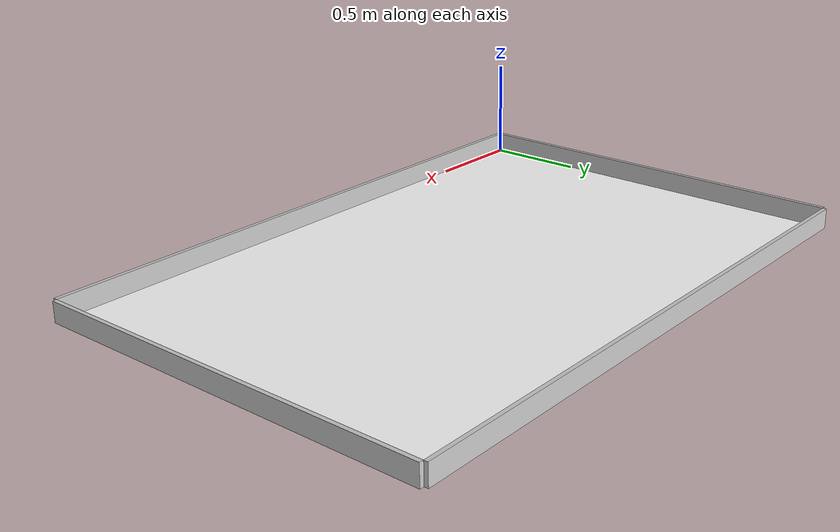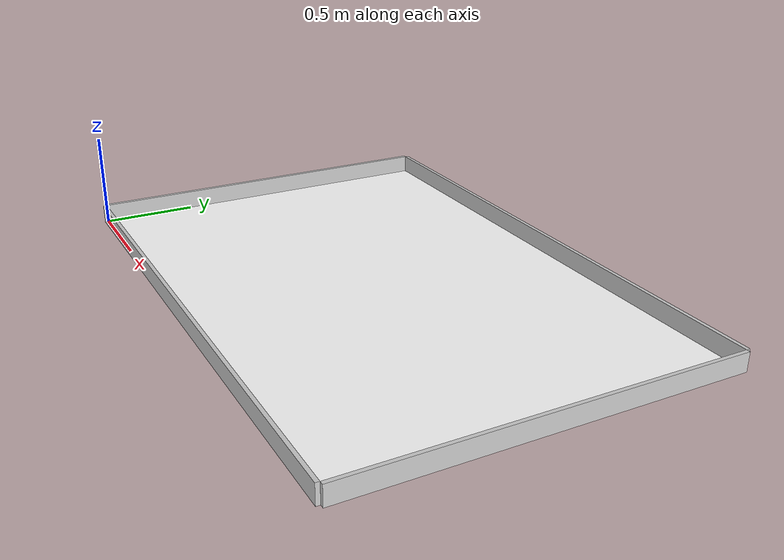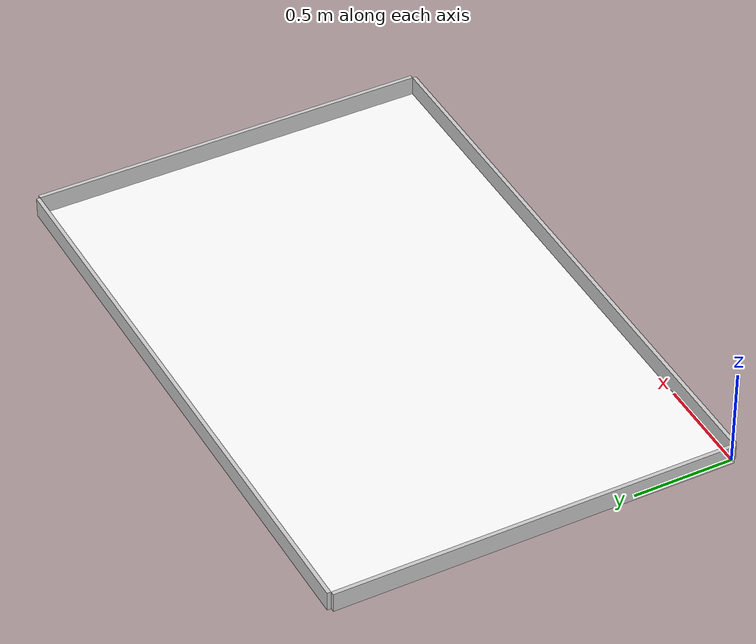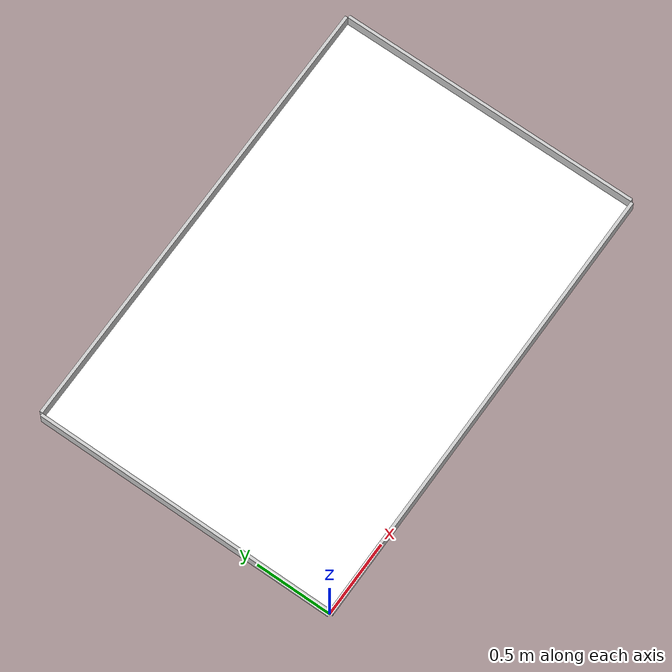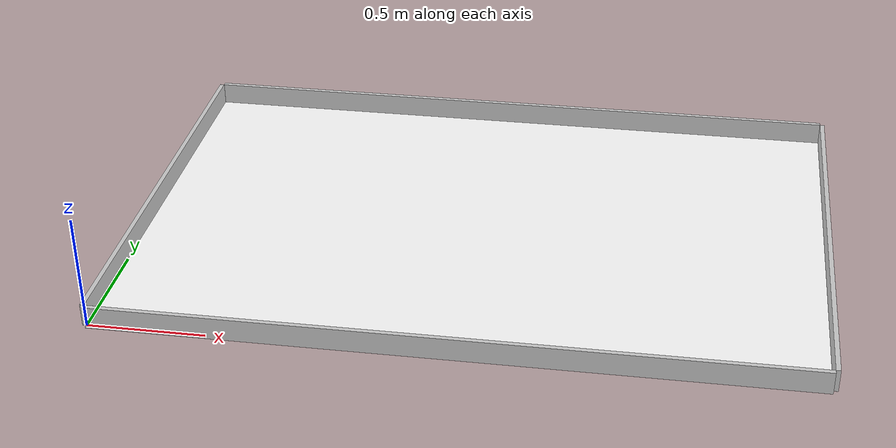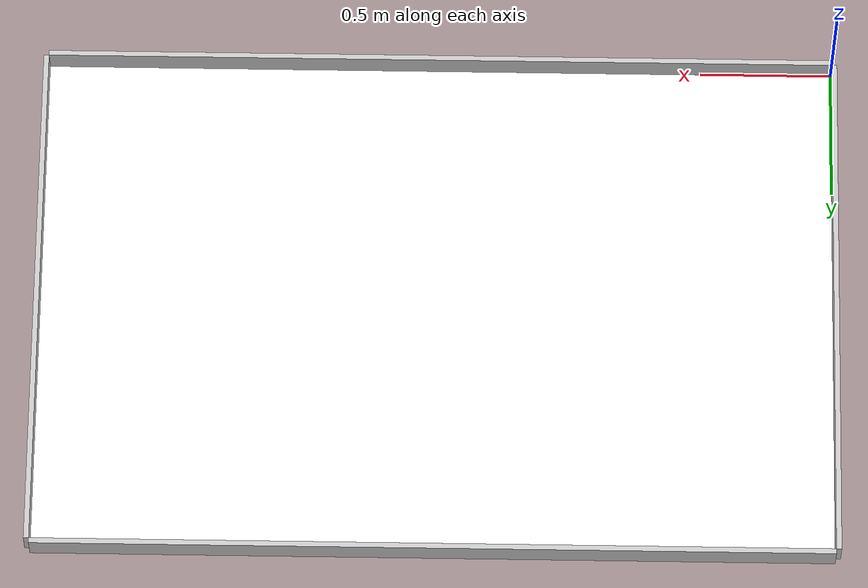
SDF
<?xml version="1.0" ?>
<sdf version="1.6">
  <world name="arena_world">

    <!-- ================== GUI / Caméra par défaut ================== -->

    <!-- ================== Lumière ================== -->
    <light name="sun" type="directional">
      <cast_shadows>true</cast_shadows>
      <pose>1.5 1.0 2 0 0 0</pose>
      <diffuse>1 1 1 1</diffuse>
      <specular>0.2 0.2 0.2 1</specular>
      <direction>-0.5 0.1 -0.9</direction>
    </light>

    <!-- ================== Sol ================== -->
    <model name="textured_floor">
      <static>true</static>
      <pose>1.5 1.0 0 0 0 0</pose>
      <link name="link">
        <collision name="collision">
          <geometry>
            <plane>
              <normal>0 0 1</normal>
              <size>3 2</size>
            </plane>
          </geometry>
        </collision>
        <visual name="visual">
          <geometry>
            <plane>
              <normal>0 0 1</normal>
              <size>3 2</size>
            </plane>
          </geometry>
          <material>
            <diffuse>1 1 1 1</diffuse>
            <specular>0.0 0.0 0.0 1</specular>
            <pbr>
              <metal>
                <albedo_map>materials/textures/map_image.png</albedo_map>
              </metal>
            </pbr>
          </material>
        </visual>

      </link>
    </model>

    <!-- ================== Scene ================== -->
    <scene>
      <ambient>0.4 0.4 0.4 1</ambient>
      <background>0.7 0.7 0.7 1</background>
      <shadows>true</shadows>
    </scene>

    <!--  MURS  -->
    <model name="wall_north">
      <static>true</static>
      <pose>1.5 2.01 0.05 0 0 0</pose>
      <link name="link">
        <collision name="col">
          <geometry><box><size>3 0.02 0.1</size></box></geometry>
        </collision>
        <visual name="vis">
          <geometry><box><size>3 0.02 0.1</size></box></geometry>
          <material><ambient>0.8 0.8 0.8 1</ambient><diffuse>0.8 0.8 0.8 1</diffuse></material>
        </visual>
      </link>
    </model>

    <model name="wall_south">
      <static>true</static>
      <pose>1.5 -0.01 0.05 0 0 0</pose>
      <link name="link">
        <collision name="col">
          <geometry><box><size>3 0.02 0.1</size></box></geometry>
        </collision>
        <visual name="vis">
          <geometry><box><size>3 0.02 0.1</size></box></geometry>
          <material><ambient>0.8 0.8 0.8 1</ambient><diffuse>0.8 0.8 0.8 1</diffuse></material>
        </visual>
      </link>
    </model>

    <model name="wall_east">
      <static>true</static>
      <pose>-0.01 1.0 0.05 0 0 0</pose>
      <link name="link">
        <collision name="col">
          <geometry><box><size>0.02 2 0.1</size></box></geometry>
        </collision>
        <visual name="vis">
          <geometry><box><size>0.02 2 0.1</size></box></geometry>
          <material><ambient>0.8 0.8 0.8 1</ambient><diffuse>0.8 0.8 0.8 1</diffuse></material>
        </visual>
      </link>
    </model>

    <model name="wall_west">
      <static>true</static>
      <pose>3.01 1.0 0.05 0 0 0</pose>
      <link name="link">
        <collision name="col">
          <geometry><box><size>0.02 2 0.1</size></box></geometry>
        </collision>
        <visual name="vis">
          <geometry><box><size>0.02 2 0.1</size></box></geometry>
          <material><ambient>0.8 0.8 0.8 1</ambient><diffuse>0.8 0.8 0.8 1</diffuse></material>
        </visual>
      </link>
    </model>

</world>
</sdf>
